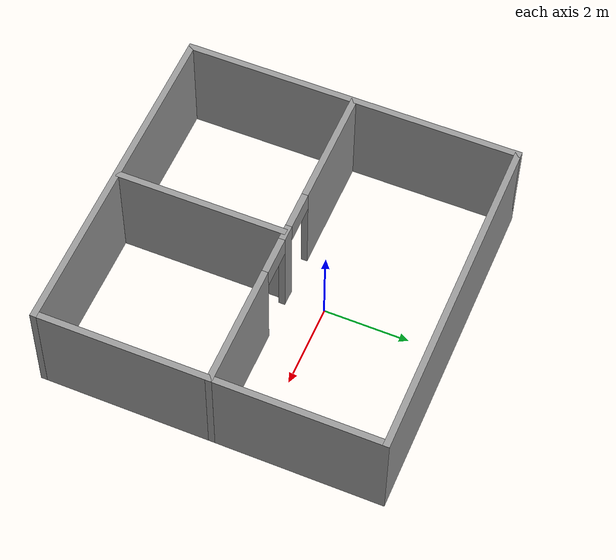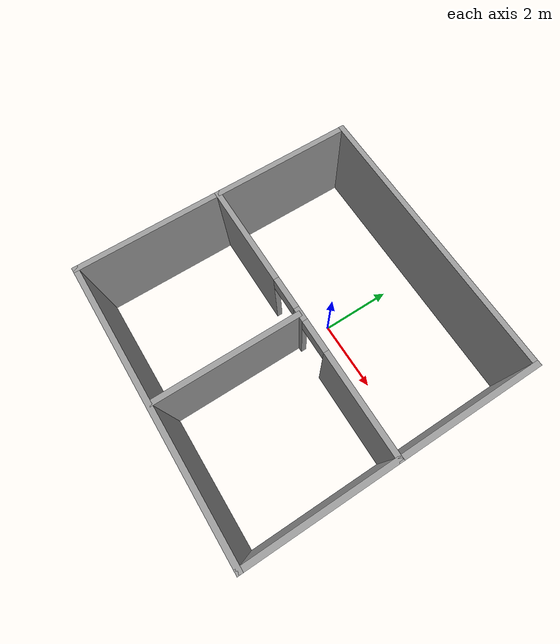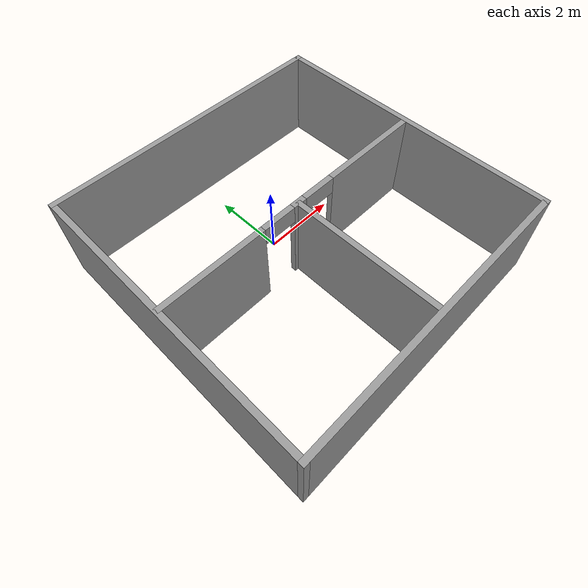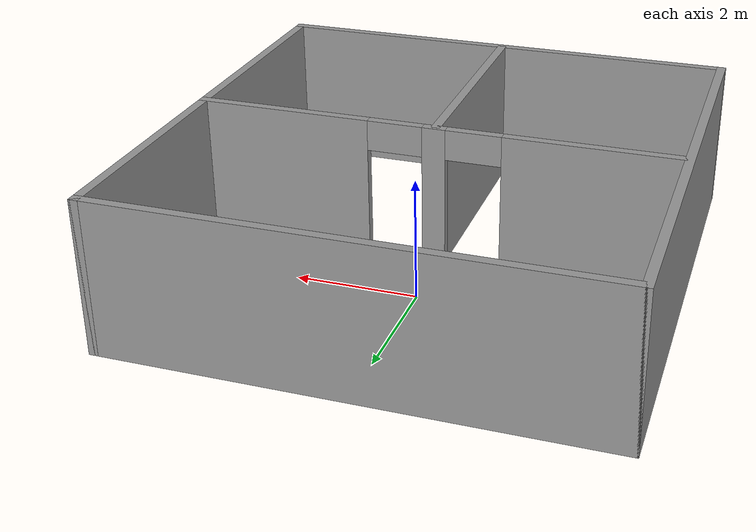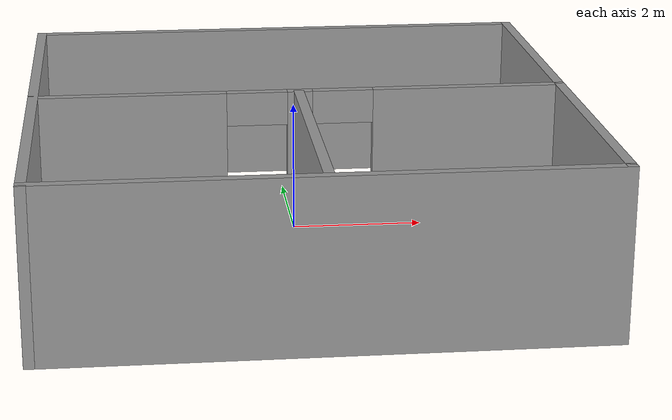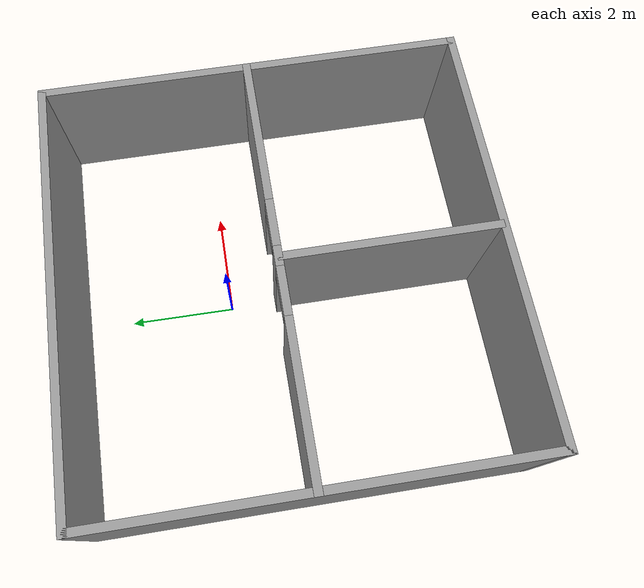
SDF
<sdf version="1.4">
 <world name="default">
  <scene><ambient>0.68 0.68 0.68 1.0</ambient><sky><clouds><speed>12</speed></clouds></sky></scene>
  <physics type="ode">
   <max_step_size>0.001</max_step_size>
   <real_time_factor>1</real_time_factor>
   <real_time_update_rate>1000</real_time_update_rate>
   <gravity>0 0 -9.8</gravity>
  </physics>
  <include><uri>model://sun</uri></include>
  <include><uri>model://our_house</uri><pose>0 -1.0 0 0 0 0</pose></include>
 </world>
</sdf>

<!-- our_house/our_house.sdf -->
<sdf version='1.6'>
  <model name='our_house'>
    <pose frame=''>0.665044 -4.735 0 0 -0 0</pose>
    <link name='Wall_0'>
      <collision name='Wall_0_Collision'>
        <geometry>
          <box>
            <size>8 0.15 2.5</size>
          </box>
        </geometry>
        <pose frame=''>0 0 1.25 0 -0 0</pose>
      </collision>
      <visual name='Wall_0_Visual'>
        <pose frame=''>0 0 1.25 0 -0 0</pose>
        <geometry>
          <box>
            <size>8 0.15 2.5</size>
          </box>
        </geometry>
        <material>
          <script>
            <uri>file://media/materials/scripts/gazebo.material</uri>
            <name>Gazebo/Grey</name>
          </script>
          <ambient>1 1 1 1</ambient>
        </material>
        <meta>
          <layer>0</layer>
        </meta>
      </visual>
      <pose frame=''>-4.4e-05 3.925 0 0 -0 0</pose>
    </link>
    <link name='Wall_3'>
      <collision name='Wall_3_Collision'>
        <geometry>
          <box>
            <size>8 0.15 2.5</size>
          </box>
        </geometry>
        <pose frame=''>0 0 1.25 0 -0 0</pose>
      </collision>
      <visual name='Wall_3_Visual'>
        <pose frame=''>0 0 1.25 0 -0 0</pose>
        <geometry>
          <box>
            <size>8 0.15 2.5</size>
          </box>
        </geometry>
        <material>
          <script>
            <uri>file://media/materials/scripts/gazebo.material</uri>
            <name>Gazebo/Grey</name>
          </script>
          <ambient>1 1 1 1</ambient>
        </material>
        <meta>
          <layer>0</layer>
        </meta>
      </visual>
      <pose frame=''>3.92496 0 0 0 0 -1.5708</pose>
    </link>
    <link name='Wall_4'>
      <collision name='Wall_4_Collision'>
        <geometry>
          <box>
            <size>8 0.15 2.5</size>
          </box>
        </geometry>
        <pose frame=''>0 0 1.25 0 -0 0</pose>
      </collision>
      <visual name='Wall_4_Visual'>
        <pose frame=''>0 0 1.25 0 -0 0</pose>
        <geometry>
          <box>
            <size>8 0.15 2.5</size>
          </box>
        </geometry>
        <material>
          <script>
            <uri>file://media/materials/scripts/gazebo.material</uri>
            <name>Gazebo/Grey</name>
          </script>
          <ambient>1 1 1 1</ambient>
        </material>
        <meta>
          <layer>0</layer>
        </meta>
      </visual>
      <pose frame=''>-4.4e-05 -3.925 0 0 -0 3.14159</pose>
    </link>
    <link name='Wall_5'>
      <collision name='Wall_5_Collision'>
        <geometry>
          <box>
            <size>8 0.15 2.5</size>
          </box>
        </geometry>
        <pose frame=''>0 0 1.25 0 -0 0</pose>
      </collision>
      <visual name='Wall_5_Visual'>
        <pose frame=''>0 0 1.25 0 -0 0</pose>
        <geometry>
          <box>
            <size>8 0.15 2.5</size>
          </box>
        </geometry>
        <material>
          <script>
            <uri>file://media/materials/scripts/gazebo.material</uri>
            <name>Gazebo/Grey</name>
          </script>
          <ambient>1 1 1 1</ambient>
        </material>
        <meta>
          <layer>0</layer>
        </meta>
      </visual>
      <pose frame=''>-3.92504 0 0 0 -0 1.5708</pose>
    </link>
    <link name='Wall_7'>
      <pose frame=''>4.5e-05 0.056828 0 0 -0 0</pose>
      <visual name='Wall_7_Visual_0'>
        <pose frame=''>-2.54495 0 1.25 0 -0 0</pose>
        <geometry>
          <box>
            <size>2.91009 0.15 2.5</size>
          </box>
        </geometry>
        <material>
          <script>
            <uri>file://media/materials/scripts/gazebo.material</uri>
            <name>Gazebo/Grey</name>
          </script>
          <ambient>1 1 1 1</ambient>
        </material>
        <meta>
          <layer>0</layer>
        </meta>
      </visual>
      <collision name='Wall_7_Collision_0'>
        <geometry>
          <box>
            <size>2.91009 0.15 2.5</size>
          </box>
        </geometry>
        <pose frame=''>-2.54495 0 1.25 0 -0 0</pose>
      </collision>
      <visual name='Wall_7_Visual_1'>
        <pose frame=''>-0.001142 0 1.25 0 -0 0</pose>
        <geometry>
          <box>
            <size>0.377535 0.15 2.5</size>
          </box>
        </geometry>
        <material>
          <script>
            <uri>file://media/materials/scripts/gazebo.material</uri>
            <name>Gazebo/Grey</name>
          </script>
          <ambient>1 1 1 1</ambient>
        </material>
        <meta>
          <layer>0</layer>
        </meta>
      </visual>
      <collision name='Wall_7_Collision_1'>
        <geometry>
          <box>
            <size>0.377535 0.15 2.5</size>
          </box>
        </geometry>
        <pose frame=''>-0.001142 0 1.25 0 -0 0</pose>
      </collision>
      <visual name='Wall_7_Visual_2'>
        <pose frame=''>2.54381 0 1.25 0 -0 0</pose>
        <geometry>
          <box>
            <size>2.91237 0.15 2.5</size>
          </box>
        </geometry>
        <material>
          <script>
            <uri>file://media/materials/scripts/gazebo.material</uri>
            <name>Gazebo/Grey</name>
          </script>
          <ambient>1 1 1 1</ambient>
        </material>
        <meta>
          <layer>0</layer>
        </meta>
      </visual>
      <collision name='Wall_7_Collision_2'>
        <geometry>
          <box>
            <size>2.91237 0.15 2.5</size>
          </box>
        </geometry>
        <pose frame=''>2.54381 0 1.25 0 -0 0</pose>
      </collision>
      <visual name='Wall_7_Visual_3'>
        <pose frame=''>-0.63991 0 2.25 0 -0 0</pose>
        <geometry>
          <box>
            <size>0.9 0.15 0.5</size>
          </box>
        </geometry>
        <material>
          <script>
            <uri>file://media/materials/scripts/gazebo.material</uri>
            <name>Gazebo/Grey</name>
          </script>
          <ambient>1 1 1 1</ambient>
        </material>
        <meta>
          <layer>0</layer>
        </meta>
      </visual>
      <collision name='Wall_7_Collision_3'>
        <geometry>
          <box>
            <size>0.9 0.15 0.5</size>
          </box>
        </geometry>
        <pose frame=''>-0.63991 0 2.25 0 -0 0</pose>
      </collision>
      <visual name='Wall_7_Visual_4'>
        <pose frame=''>0.637625 0 2.25 0 -0 0</pose>
        <geometry>
          <box>
            <size>0.9 0.15 0.5</size>
          </box>
        </geometry>
        <material>
          <script>
            <uri>file://media/materials/scripts/gazebo.material</uri>
            <name>Gazebo/Grey</name>
          </script>
          <ambient>1 1 1 1</ambient>
        </material>
        <meta>
          <layer>0</layer>
        </meta>
      </visual>
      <collision name='Wall_7_Collision_4'>
        <geometry>
          <box>
            <size>0.9 0.15 0.5</size>
          </box>
        </geometry>
        <pose frame=''>0.637625 0 2.25 0 -0 0</pose>
      </collision>
    </link>
    <link name='Wall_9'>
      <collision name='Wall_9_Collision'>
        <geometry>
          <box>
            <size>4 0.15 2.5</size>
          </box>
        </geometry>
        <pose frame=''>0 0 1.25 0 -0 0</pose>
      </collision>
      <visual name='Wall_9_Visual'>
        <pose frame=''>0 0 1.25 0 -0 0</pose>
        <geometry>
          <box>
            <size>4 0.15 2.5</size>
          </box>
        </geometry>
        <material>
          <script>
            <uri>file://media/materials/scripts/gazebo.material</uri>
            <name>Gazebo/Grey</name>
          </script>
          <ambient>1 1 1 1</ambient>
        </material>
        <meta>
          <layer>0</layer>
        </meta>
      </visual>
      <pose frame=''>-0.016306 -1.92682 0 0 -0 1.5708</pose>
    </link>
    <static>1</static>
  </model>
</sdf>
